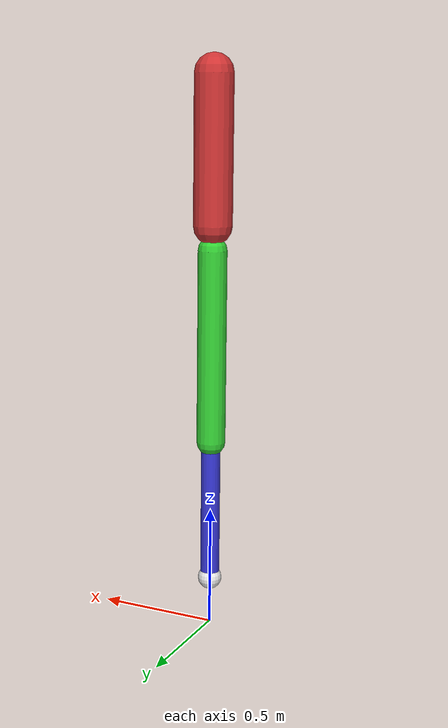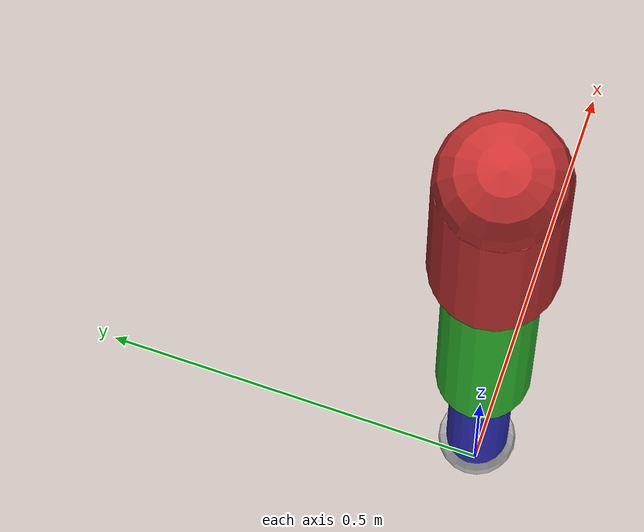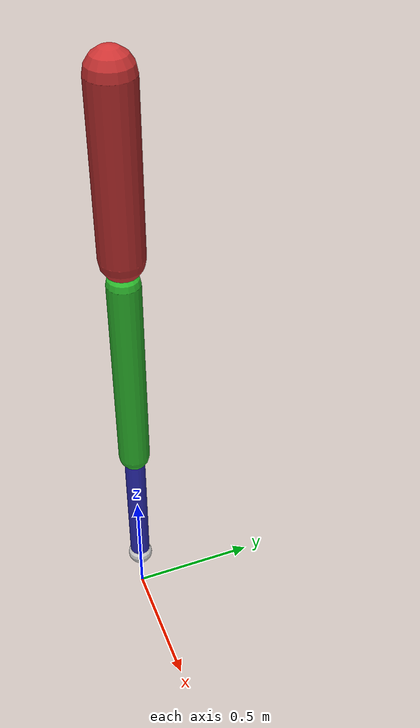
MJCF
<mujoco model="simple_hopper">

  <compiler angle="radian" inertiafromgeom="true"/>
  <default>
    <geom type="capsule" condim="1" mass="1"/>
    <joint limited="true"/>
    <motor ctrlrange="-1.0 1.0" ctrllimited="true"/>
    <site size="0.05" rgba="0.9 0.9 0.9 0.7" type="sphere"/>
  </default>

  <!-- 3. Actuators (Motors) -->
  <actuator>
    <!-- Hinge motor for the thigh joint -->
    <motor name="thigh_motor" joint="thigh_joint" gear="100"/>
  </actuator>

  <!-- 4. The Robot Body Structure -->
  <worldbody>
    <light pos="0 0 5" dir="0 0 -1" directional="true"/>

    <!-- The Torso (Root Body) -->
    <body name="torso" pos="0 0 2.0">
      <geom name="torso_geom" type="capsule" size="0.08 0.3" mass="1" zaxis="0 0 1" rgba="0.8 0.2 0.2 1"/>

      <!-- The Free Joint (Connects Torso to the World) -->
      <!-- This adds the first 7 DOFs (3 position, 4 quaternion orientation) -->
      <joint name="root" type="free"/>

      <!-- Site for Observation reference (e.g., foot contact point) -->
      <site name="tip" pos="0 0 0.3"/>

      <!-- Thigh Segment -->
      <body name="thigh" pos="0 0 -0.4">
        <joint name="thigh_joint" type="hinge" axis="0 1 0" pos="0 0 0" range="-1.57 0"/>
        <geom name="thigh_geom" type="capsule" size="0.06 0.4" pos="0 0 -0.4" rgba="0.2 0.8 0.2 1"/>

        <!-- Leg/Shin Segment -->
        <body name="leg" pos="0 0 -0.8">
          <joint name="leg_joint" type="hinge" axis="0 1 0" pos="0 0 0" range="-1.57 0"/>
          <geom name="leg_geom" type="capsule" size="0.04 0.3" pos="0 0 -0.3" rgba="0.2 0.2 0.8 1"/>

          <!-- Foot Contact Site -->
          <site name="foot" pos="0 0 -0.6" type="sphere" size="0.05" rgba="0.9 0.9 0.9 1"/>
        </body>
      </body>
    </body>
  </worldbody>
</mujoco>
